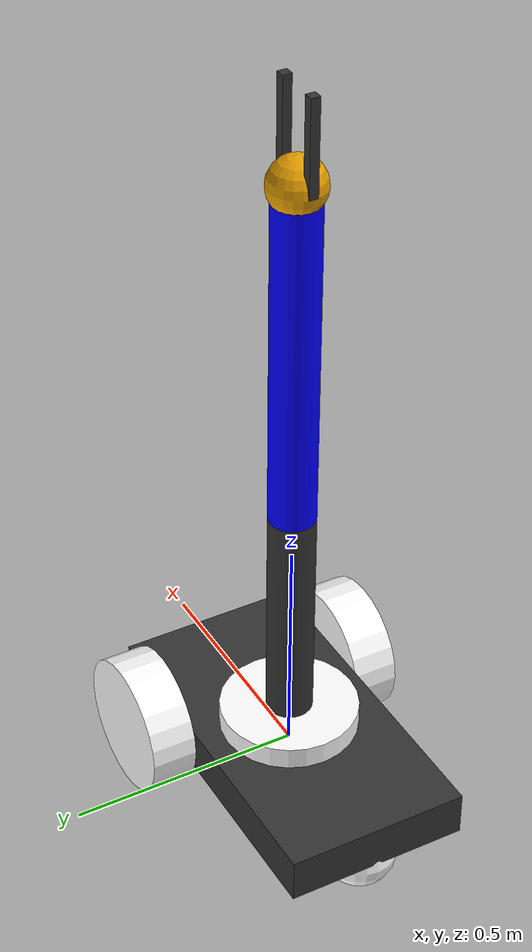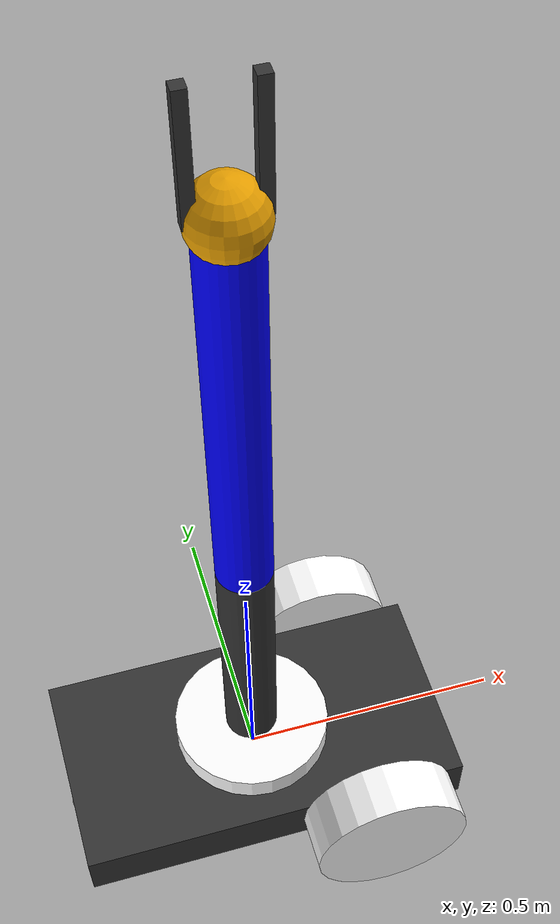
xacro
<?xml version="1.0"?>
<robot xmlns:xacro="http://ros.org/wiki/xacro" name="robotic_arm">

    <link name="base_footprint">
    </link>

    <link name="base_link">
        <visual>
            <geometry>
                <box size="0.75 0.40 0.1"/>
            </geometry>
            <material name="gray">
                <color rgba="0.2 0.2 0.2 1"/>
            </material>
        </visual>
    </link>

    <joint name="base_footprint_joint" type="fixed">
        <origin xyz="0 0 0" rpy="0 0 0"/>
        <parent link="base_footprint"/>
        <child link="base_link"/>
    </joint>

    <!-- xacro for wheels  -->
    <xacro:macro name="wheel" params="name x y">
        <link name="wheel_${name}">
            <visual>
                <geometry>
                    <cylinder radius="0.15" length="0.1"/>
                </geometry>
                <material name="white">
                    <color rgba="1 1 1 1"/>
                </material>
            </visual>
        </link>

        <joint name="${name}_wheel_joint" type="continuous">
            <origin xyz="${x} ${y} 0.0" rpy="1.57 0.0 0.0"/>
            <parent link="base_link"/>
            <child link="wheel_${name}"/>
            <axis xyz="0.0 0.0 1.0"/>
        </joint>
    </xacro:macro>

    <xacro:wheel name="left" x="0.2" y="-0.25"/>
    <xacro:wheel name="right" x="0.2" y="0.25"/>

    <link name="caster">
        <visual>
            <geometry>
                <sphere radius="0.08"/>
            </geometry>
            <material name="white"/>
        </visual>
    </link>

    <link name="arm_base">
        <visual>
            <geometry>
                <cylinder length="0.1" radius="0.15"/>
            </geometry>
            <material name="white">
                <color rgba="1 1 1 1"/>
            </material>
        </visual>
    </link>

    <link name="shoulder">
        <visual>
            <geometry>
                <cylinder length="0.5" radius="0.05"/>
            </geometry>
            <origin xyz="0.0 0.0 0.25" rpy="0.0 0.0 0.0"/>
            <material name="gray">
                <color rgba="0.2 0.2 0.2 1"/>
            </material>
        </visual>
    </link>

    <link name="elbow">
        <visual>
            <geometry>
                <cylinder length="0.75" radius="0.05"/>
            </geometry>
            <origin xyz="0.0 0.0 0.375" rpy="0.0 0.0 0.0"/>
            <material name="blue">
                <color rgba="0 0 1 1"/>
            </material>
        </visual>
    </link>

    <link name="wrist">
        <visual>
            <geometry>
                <sphere radius="0.06"/>
            </geometry>
        </visual>
    </link>

    <!-- xacro for fingers  -->
    <xacro:macro name="finger" params="name origin_x lower upper">

        <link name="finger_${name}">
            <visual>
                <geometry>
                    <box size="0.02 0.02 0.20"/>
                </geometry>
                <origin xyz="0.0 0.0 0.10" rpy="0.0 0.0 0.0"/>
                <material name="gray">
                    <color rgba="0.2 0.2 0.2 1"/>
                </material>
            </visual>
        </link>

        <joint name="finger_${name}_joint" type="prismatic">
            <origin xyz="${origin_x} 0.0 0.0" rpy="0.0 0.0 0.0"/>
            <parent link="wrist"/>
            <child link="finger_${name}"/>
            <axis xyz="1.0 0.0 0.0"/>
            <limit lower="${lower}" upper="${upper}" effort="10.0" velocity="10.0"/>
        </joint>

    </xacro:macro>

    <xacro:finger name="lower" origin_x="-0.05" lower="0.0" upper="0.05"/>
    <xacro:finger name="upper" origin_x="0.05" lower="-0.05" upper="0.0"/>

    <!-- xacro for fixed and continous joints  -->
    <xacro:macro name="fixed_continuous" params="name x y z joint parent">

        <joint name="${name}_joint" type="${joint}">
            <origin xyz="${x} ${y} ${z}" rpy="0.0 0.0 0.0"/>
            <parent link="${parent}"/>
            <child link="${name}"/>
            <axis xyz="0.0 0.0 1.0"/>
        </joint>

    </xacro:macro>

    <xacro:fixed_continuous name="arm_base" x="0.0" y="0.0" z="0.05" joint="fixed" parent="base_link"/>
    <xacro:fixed_continuous name="shoulder" x="0.0" y="0.0" z="0.05" joint="continuous" parent="arm_base"/>
    <xacro:fixed_continuous name="caster" x="-0.3" y="0.0" z="-0.07" joint="continuous" parent="base_link"/>

    <!-- xacro for revolute joints  -->
    <xacro:macro name="revolute" params="name z lower upper parent">

        <joint name="${name}_joint" type="revolute">
            <origin xyz="0.0 0.0 ${z}" rpy="0.0 0.0 0.0"/>
            <parent link="${parent}"/>
            <child link="${name}"/>
            <axis xyz="1.0 0.0 0.0"/>
            <limit lower="${lower}" upper="${upper}" effort="10.0" velocity="10.0"/>
        </joint>

    </xacro:macro>

    <xacro:revolute name="elbow" z="0.5" lower="-2.0944" upper="2.0944" parent="shoulder"/>
    <xacro:revolute name="wrist" z="0.75" lower="-3.14" upper="3.14" parent="elbow"/>

</robot>
